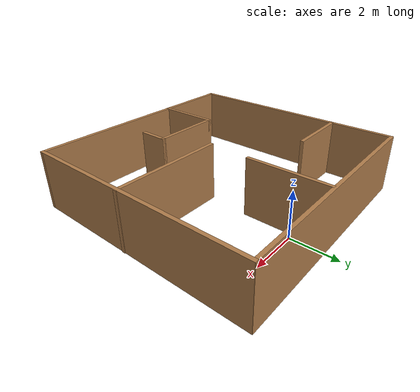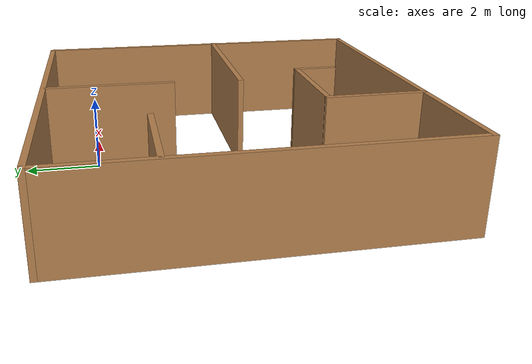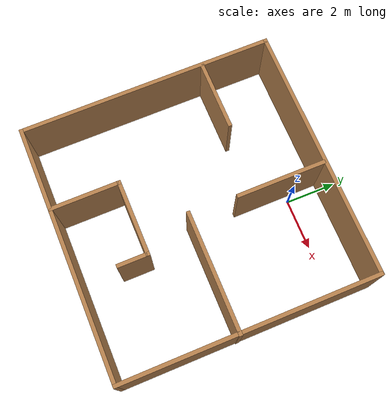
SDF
<?xml version='1.0'?>
<sdf version='1.7'>
  <model name='vacumm_maze3'>
    <pose>-0.733076 -3.6045 0 0 -0 0</pose>
    <link name='Wall_0'>
      <collision name='Wall_0_Collision'>
        <geometry>
          <box>
            <size>10.0175 0.15 2.5</size>
          </box>
        </geometry>
        <pose>0 0 1.25 0 -0 0</pose>
      </collision>
      <visual name='Wall_0_Visual'>
        <pose>0 0 1.25 0 -0 0</pose>
        <geometry>
          <box>
            <size>10.0175 0.15 2.5</size>
          </box>
        </geometry>
        <material>
          <script>
            <uri>file://media/materials/scripts/gazebo.material</uri>
            <name>Gazebo/Wood</name>
          </script>
          <ambient>1 1 1 1</ambient>
        </material>
        <meta>
          <layer>0</layer>
        </meta>
      </visual>
      <pose>-4.93692 0 0 0 -0 -1.5708</pose>
    </link>
    <link name='Wall_10'>
      <collision name='Wall_10_Collision'>
        <geometry>
          <box>
            <size>3.5 0.15 2.5</size>
          </box>
        </geometry>
        <pose>0 0 1.25 0 -0 0</pose>
      </collision>
      <visual name='Wall_10_Visual'>
        <pose>0 0 1.25 0 -0 0</pose>
        <geometry>
          <box>
            <size>3.5 0.15 2.5</size>
          </box>
        </geometry>
        <material>
          <script>
            <uri>file://media/materials/scripts/gazebo.material</uri>
            <name>Gazebo/Wood</name>
          </script>
          <ambient>1 1 1 1</ambient>
        </material>
        <meta>
          <layer>0</layer>
        </meta>
      </visual>
      <pose>0.416822 3.16649 0 0 -0 1.5708</pose>
    </link>
    <link name='Wall_13'>
      <collision name='Wall_13_Collision'>
        <geometry>
          <box>
            <size>2.75 0.15 2.5</size>
          </box>
        </geometry>
        <pose>0 0 1.25 0 -0 0</pose>
      </collision>
      <visual name='Wall_13_Visual'>
        <pose>0 0 1.25 0 -0 0</pose>
        <geometry>
          <box>
            <size>2.75 0.15 2.5</size>
          </box>
        </geometry>
        <material>
          <script>
            <uri>file://media/materials/scripts/gazebo.material</uri>
            <name>Gazebo/Wood</name>
          </script>
          <ambient>1 1 1 1</ambient>
        </material>
        <meta>
          <layer>0</layer>
        </meta>
      </visual>
      <pose>-1.68524 -3.60372 0 0 -0 1.5708</pose>
    </link>
    <link name='Wall_14'>
      <collision name='Wall_14_Collision'>
        <geometry>
          <box>
            <size>3 0.15 2.5</size>
          </box>
        </geometry>
        <pose>0 0 1.25 0 -0 0</pose>
      </collision>
      <visual name='Wall_14_Visual'>
        <pose>0 0 1.25 0 -0 0</pose>
        <geometry>
          <box>
            <size>3 0.15 2.5</size>
          </box>
        </geometry>
        <material>
          <script>
            <uri>file://media/materials/scripts/gazebo.material</uri>
            <name>Gazebo/Wood</name>
          </script>
          <ambient>1 1 1 1</ambient>
        </material>
        <meta>
          <layer>0</layer>
        </meta>
      </visual>
      <pose>-0.260241 -2.30372 0 0 -0 0</pose>
    </link>
    <link name='Wall_15'>
      <collision name='Wall_15_Collision'>
        <geometry>
          <box>
            <size>1.25 0.15 2.5</size>
          </box>
        </geometry>
        <pose>0 0 1.25 0 -0 0</pose>
      </collision>
      <visual name='Wall_15_Visual'>
        <pose>0 0 1.25 0 -0 0</pose>
        <geometry>
          <box>
            <size>1.25 0.15 2.5</size>
          </box>
        </geometry>
        <material>
          <script>
            <uri>file://media/materials/scripts/gazebo.material</uri>
            <name>Gazebo/Wood</name>
          </script>
          <ambient>1 1 1 1</ambient>
        </material>
        <meta>
          <layer>0</layer>
        </meta>
      </visual>
      <pose>1.16476 -2.85372 0 0 -0 -1.5708</pose>
    </link>
    <link name='Wall_2'>
      <collision name='Wall_2_Collision'>
        <geometry>
          <box>
            <size>10 0.15 2.5</size>
          </box>
        </geometry>
        <pose>0 0 1.25 0 -0 0</pose>
      </collision>
      <visual name='Wall_2_Visual'>
        <pose>0 0 1.25 0 -0 0</pose>
        <geometry>
          <box>
            <size>10 0.15 2.5</size>
          </box>
        </geometry>
        <material>
          <script>
            <uri>file://media/materials/scripts/gazebo.material</uri>
            <name>Gazebo/Wood</name>
          </script>
          <ambient>1 1 1 1</ambient>
        </material>
        <meta>
          <layer>0</layer>
        </meta>
      </visual>
      <pose>-0.011924 -4.93375 0 0 -0 3.14159</pose>
    </link>
    <link name='Wall_20'>
      <collision name='Wall_20_Collision'>
        <geometry>
          <box>
            <size>4.75 0.15 2.5</size>
          </box>
        </geometry>
        <pose>0 0 1.25 0 -0 0</pose>
      </collision>
      <visual name='Wall_20_Visual'>
        <pose>0 0 1.25 0 -0 0</pose>
        <geometry>
          <box>
            <size>4.75 0.15 2.5</size>
          </box>
        </geometry>
        <material>
          <script>
            <uri>file://media/materials/scripts/gazebo.material</uri>
            <name>Gazebo/Wood</name>
          </script>
          <ambient>1 1 1 1</ambient>
        </material>
        <meta>
          <layer>0</layer>
        </meta>
      </visual>
      <pose>2.63693 -0.423647 0 0 -0 3.14159</pose>
    </link>
    <link name='Wall_4'>
      <collision name='Wall_4_Collision'>
        <geometry>
          <box>
            <size>10 0.15 2.5</size>
          </box>
        </geometry>
        <pose>0 0 1.25 0 -0 0</pose>
      </collision>
      <visual name='Wall_4_Visual'>
        <pose>0 0 1.25 0 -0 0</pose>
        <geometry>
          <box>
            <size>10 0.15 2.5</size>
          </box>
        </geometry>
        <material>
          <script>
            <uri>file://media/materials/scripts/gazebo.material</uri>
            <name>Gazebo/Wood</name>
          </script>
          <ambient>1 1 1 1</ambient>
        </material>
        <meta>
          <layer>0</layer>
        </meta>
      </visual>
      <pose>4.91308 -0.008745 0 0 -0 -1.5708</pose>
    </link>
    <link name='Wall_6'>
      <collision name='Wall_6_Collision'>
        <geometry>
          <box>
            <size>10 0.15 2.5</size>
          </box>
        </geometry>
        <pose>0 0 1.25 0 -0 0</pose>
      </collision>
      <visual name='Wall_6_Visual'>
        <pose>0 0 1.25 0 -0 0</pose>
        <geometry>
          <box>
            <size>10 0.15 2.5</size>
          </box>
        </geometry>
        <material>
          <script>
            <uri>file://media/materials/scripts/gazebo.material</uri>
            <name>Gazebo/Wood</name>
          </script>
          <ambient>1 1 1 1</ambient>
        </material>
        <meta>
          <layer>0</layer>
        </meta>
      </visual>
      <pose>-0.011924 4.93375 0 0 -0 3.14159</pose>
    </link>
    <link name='Wall_8'>
      <collision name='Wall_8_Collision'>
        <geometry>
          <box>
            <size>2.75 0.15 2.5</size>
          </box>
        </geometry>
        <pose>0 0 1.25 0 -0 0</pose>
      </collision>
      <visual name='Wall_8_Visual'>
        <pose>0 0 1.25 0 -0 0</pose>
        <geometry>
          <box>
            <size>2.75 0.15 2.5</size>
          </box>
        </geometry>
        <material>
          <script>
            <uri>file://media/materials/scripts/gazebo.material</uri>
            <name>Gazebo/Wood</name>
          </script>
          <ambient>1 1 1 1</ambient>
        </material>
        <meta>
          <layer>0</layer>
        </meta>
      </visual>
      <pose>-3.55916 2.27647 0 0 -0 3.14159</pose>
    </link>
    <static>1</static>
  </model>
</sdf>
